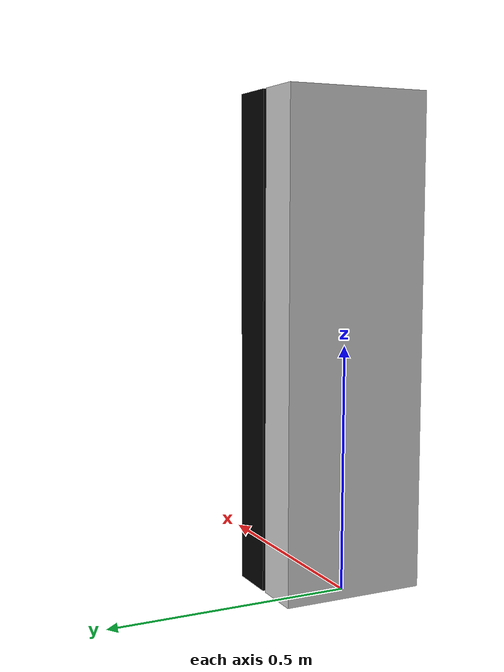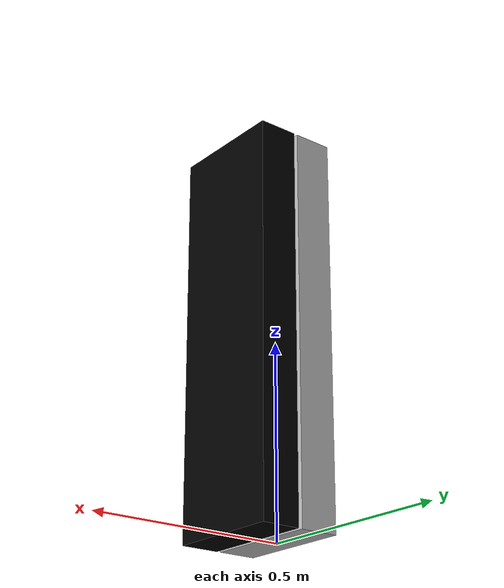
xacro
<?xml version="1.0"?>
<robot name="plate_robot" xmlns:xacro="http://www.ros.org/wiki/xacro">
  <!-- Base link (vertical plate fixed to the ground) -->
  <link name="base_link">
    <visual>
      <origin xyz="0 0 0.5" rpy="0 0 0"/>
      <geometry>
        <box size="0.1 0.3 1.0"/>
      </geometry>
      <material name="silver">
        <color rgba="0.7 0.7 0.7 1"/>
      </material>
    </visual>
    <collision>
      <origin xyz="0 0 0.5" rpy="0 0 0"/>
      <geometry>
        <box size="0.1 0.3 1.0"/>
      </geometry>
    </collision>
    <inertial>
      <mass value="1.0"/>
      <inertia ixx="0.0833" ixy="0" ixz="0" iyy="0.0271" iyz="0" izz="0.0833"/>
    </inertial>
  </link>

  <!-- Moving plate link (vertical plate sliding up and down) -->
  <link name="moving_plate_link">
    <visual>
      <origin xyz="0 0 0" rpy="0 0 0"/>
      <geometry>
        <box size="0.1 0.3 1.0"/>
      </geometry>
      <material name="black">
        <color rgba="0 0 0 1"/>
      </material>
    </visual>
    <collision>
      <origin xyz="0 0 0" rpy="0 0 0"/>
      <geometry>
        <box size="0.1 0.3 1.0"/>
      </geometry>
    </collision>
    <inertial>
      <mass value="0.5"/>
      <inertia ixx="0.0417" ixy="0" ixz="0" iyy="0.0135" iyz="0" izz="0.0417"/>
    </inertial>
  </link>

  <!-- Prismatic joint between base and moving plate -->
  <joint name="base_to_plate" type="prismatic">
    <parent link="base_link"/>
    <child link="moving_plate_link"/>
    <origin xyz="0.11 0 0.5" rpy="0 0 0"/>
    <axis xyz="0 0 1"/>
    <limit lower="0" upper="1.2" velocity="1.0" effort="100"/>
    <dynamics damping="0.1" friction="0.1"/>
  </joint>

  <!-- Fix base_link to the world -->
  <link name="world"/>
  <joint name="base_to_world" type="fixed">
    <parent link="world"/>
    <child link="base_link"/>
    <origin xyz="0 0 0" rpy="0 0 0"/>
  </joint>
</robot>
